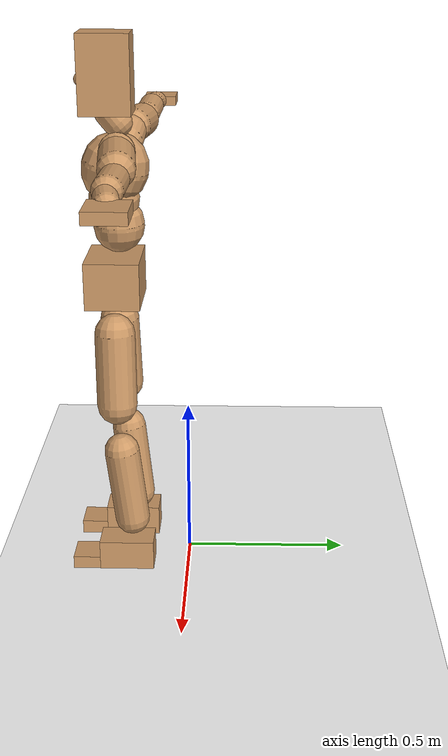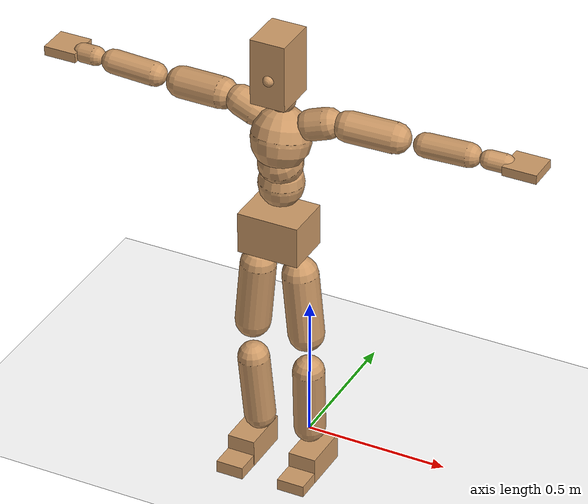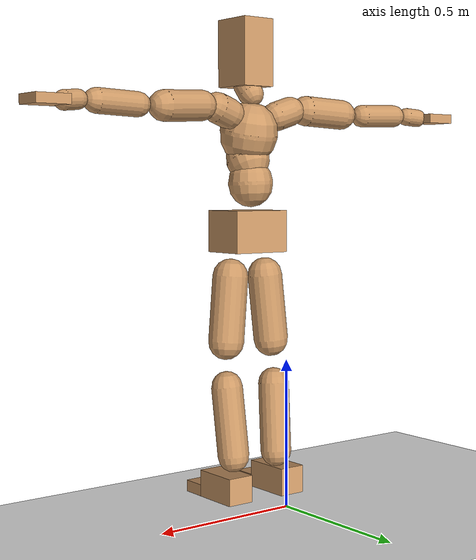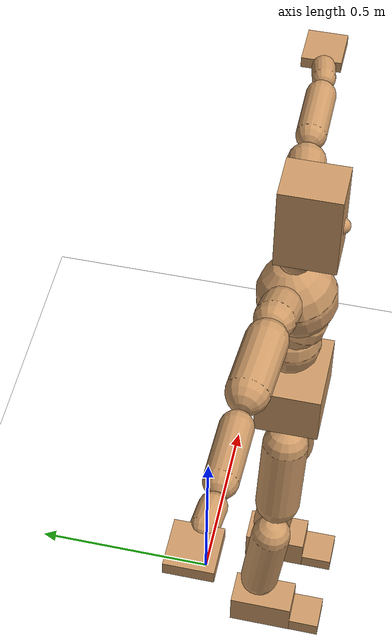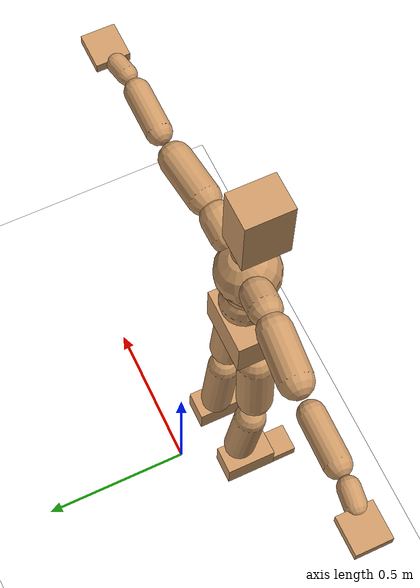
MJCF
<mujoco model="humanoid">
  <option integrator="implicitfast" />

  <visual>
    <global offwidth="1280" offheight="960" />
    <headlight active="1" ambient="0.34 0.34 0.34" diffuse="0.5 0.5 0.5" />
  </visual>

  <default>
    <joint damping="2" stiffness="2" armature="0.01" limited="true" solimplimit="0 .99 .01" />
    <geom condim="1" friction="0.7 0.005 0.0001" solimp=".99 .99 .003" solref="0.015 1" margin="0.001" rgba="0.8 0.6 .4 1" />
    <default class="smplcontact">
      <geom condim="3" friction="1. 0.005 0.0001" solref="0.015 1" solimp="0.98 0.98 0.001" priority="1" />
    </default>
    <default class="stiff_medium">
      <joint stiffness="10" />
    </default>
    <default class="stiff_medium_higher">
      <joint stiffness="50" />
    </default>
    <default class="stiff_high">
      <joint stiffness="100" />
    </default>
  </default>

  <asset>
    <texture type="skybox" builtin="gradient" rgb1="0.99 0.99 0.99" rgb2="0.608 0.828 0.892" width="100" />
    <texture builtin="flat" height="1278" mark="cross" markrgb="1 1 1" name="texgeom" random="0.01" rgb1="0.8 0.6 0.4" rgb2="0.8 0.6 0.4" type="cube" width="127" />
    <texture name="texplane" type="2d" builtin="checker" markrgb="1 1 1" rgb1="0.756 0.772 0.76" rgb2="0.6 0.6 0.6" width="100" height="100" />
    <material name="MatPlane" reflectance="0.5" texture="texplane" texrepeat="1 1" texuniform="true" />
    <material name="geom" texture="texgeom" texuniform="true" />
  </asset>

  <worldbody>
    <light name="tracking_light" pos="0 0 7" dir="0 0 -1" directional="true" cutoff="100" exponent="1" diffuse="1 1 1" specular="0.1 0.1 0.1" mode="trackcom" />
    <camera name="back" pos="0 3 2.4" xyaxes="-1 0 0 0 -1 2" mode="trackcom" />
    <camera name="side" pos="-3 0 2.4" xyaxes="0 -1 0 1 0 2" mode="trackcom" />
    <camera name="front_side" pos="-2.8 -2.8 0.8" xyaxes="0.5 -0.5 0 0.1 0.1 1" mode="trackcom" />
    <geom condim="3" name="floor" pos="0 0 0" rgba="1 1 1 1" size="100 100 .2" type="plane" material="MatPlane" />
    <body name="Pelvis" pos="-0.0018 -0.2233 0.9367" euler="90 0 0">
      <site name="Pelvis" size="0.01" />
      <freejoint name="Pelvis" />
      <geom type="box" pos="-0.0000 -0.0121 -0.0055" size="0.1069 0.0722 0.083" quat="1.0000 0.0000 0.0000 0.0000" density="3165.830099" name="Pelvis" />
      <body name="L_Hip" pos="0.0695 -0.0914 -0.0068">
        <joint name="L_Hip_x" type="hinge" pos="0 0 0" axis="1 0 0" stiffness="10.0" range="-160.0 22.92" class="stiff_medium" damping="15.0" armature="0.01"/>
        <joint name="L_Hip_y" type="hinge" pos="0 0 0" axis="0 1 0" stiffness="10.0" range="-70.0 70.0" class="stiff_medium" damping="10.000000000000007" armature="0.010000000000000014"/>
        <joint name="L_Hip_z" type="hinge" pos="0 0 0" axis="0 0 1" stiffness="10.0" range="-28.65 90.0" class="stiff_medium" damping="9.999999999999998" armature="0.009999999999999998"/>
        <geom type="capsule" density="2040.816327" fromto="0.0069 -0.075 -0.0009 0.0274 -0.3002 -0.0036" size="0.0615" name="L_Hip" />
        <body name="L_Knee" pos="0.0343 -0.3752 -0.0045">
          <joint name="L_Knee_x" type="hinge" pos="0 0 0" axis="1 0 0" range="-5.16 171.89" damping="8.000000000000002" armature="0.010000000000000007" stiffness="2.0"/>
          <joint name="L_Knee_y" type="hinge" pos="0 0 0" axis="0 1 0" range="-4.58 6.88" damping="8.000000000000004" armature="0.010000000000000009" stiffness="2.0"/>
          <joint name="L_Knee_z" type="hinge" pos="0 0 0" axis="0 0 1" range="-6.88 4.58" damping="8.0" armature="0.010000000000000002" stiffness="2.0"/>
          <geom type="capsule" density="1234.567901" fromto="-0.0027 -0.0796 -0.0087 -0.0109 -0.3184 -0.035" size="0.0541" name="L_Knee" />
          <body name="L_Ankle" pos="-0.0136 -0.398 -0.0437">
            <joint name="L_Ankle_x" type="hinge" pos="0 0 0" axis="1 0 0" range="-45.84 45.84" class="stiff_medium" damping="6.000000000000039" armature="0.010000000000000132" stiffness="10.0"/>
            <joint name="L_Ankle_y" type="hinge" pos="0 0 0" axis="0 1 0" range="-74.48 22.92" class="stiff_medium" damping="3.0" armature="0.01" stiffness="10.0"/>
            <joint name="L_Ankle_z" type="hinge" pos="0 0 0" axis="0 0 1" range="-4.58 4.58" class="stiff_medium" damping="5.9999999999999645" armature="0.009999999999999882" stiffness="10.0"/>
            <geom type="box" pos="0.0233 -0.0239 0.0242" size="0.0483 0.0464 0.085" quat="1.0000 0.0000 0.0000 0.0000" density="449.071558" name="L_Ankle" class="smplcontact" />
            <body name="L_Toe" pos="0.0264 -0.0558 0.1193">
              <joint name="L_Toe_x" type="hinge" pos="0 0 0" axis="1 0 0" range="-91.67 22.92" armature="0.009999999999998932" damping="1.9999999999998932" stiffness="2.0"/>
              <joint name="L_Toe_y" type="hinge" pos="0 0 0" axis="0 1 0" range="-4.58 4.58" armature="0.009999999999999976" damping="1.9999999999999976" stiffness="2.0"/>
              <joint name="L_Toe_z" type="hinge" pos="0 0 0" axis="0 0 1" range="-4.58 4.58" armature="0.009999999999999436" damping="1.9999999999999436" stiffness="2.0"/>
              <geom type="box" pos="-0.003 0.0055 0.0248" size="0.0478 0.02 0.0496" quat="1.0000 0.0000 0.0000 0.0000" density="423.206892" name="L_Toe" class="smplcontact" />
            </body>
          </body>
        </body>
      </body>
      <body name="R_Hip" pos="-0.0677 -0.0905 -0.0043">
        <joint name="R_Hip_x" type="hinge" pos="0 0 0" axis="1 0 0" stiffness="10.0" range="-160.0 22.92" class="stiff_medium" damping="15.0" armature="0.01"/>
        <joint name="R_Hip_y" type="hinge" pos="0 0 0" axis="0 1 0" stiffness="10.0" range="-70.0 70.0" class="stiff_medium" damping="10.000000000000007" armature="0.010000000000000014"/>
        <joint name="R_Hip_z" type="hinge" pos="0 0 0" axis="0 0 1" stiffness="10.0" range="-90.0 28.65" class="stiff_medium" damping="9.999999999999998" armature="0.009999999999999998"/>
        <geom type="capsule" density="2040.816327" fromto="-0.0077 -0.0765 -0.0018 -0.0306 -0.3061 -0.0071" size="0.0606" name="R_Hip" />
        <body name="R_Knee" pos="-0.0383 -0.3826 -0.0089">
          <joint name="R_Knee_x" type="hinge" pos="0 0 0" axis="1 0 0" range="-5.16 171.89" damping="8.000000000000002" armature="0.010000000000000007" stiffness="2.0"/>
          <joint name="R_Knee_y" type="hinge" pos="0 0 0" axis="0 1 0" range="-6.88 4.58" damping="8.000000000000004" armature="0.010000000000000009" stiffness="2.0"/>
          <joint name="R_Knee_z" type="hinge" pos="0 0 0" axis="0 0 1" range="-4.58 6.88" damping="8.0" armature="0.010000000000000002" stiffness="2.0"/>
          <geom type="capsule" density="1234.567901" fromto="0.0032 -0.0797 -0.0085 0.0126 -0.3187 -0.0338" size="0.0541" name="R_Knee" />
          <body name="R_Ankle" pos="0.0158 -0.3984 -0.0423">
            <joint name="R_Ankle_x" type="hinge" pos="0 0 0" axis="1 0 0" range="-45.84 45.84" class="stiff_medium" damping="6.000000000000039" armature="0.010000000000000132" stiffness="10.0"/>
            <joint name="R_Ankle_y" type="hinge" pos="0 0 0" axis="0 1 0" range="-22.92 74.48" class="stiff_medium" damping="3.0" armature="0.01" stiffness="10.0"/>
            <joint name="R_Ankle_z" type="hinge" pos="0 0 0" axis="0 0 1" range="-4.58 4.58" class="stiff_medium" damping="5.9999999999999645" armature="0.009999999999999882" stiffness="10.0"/>
            <geom type="box" pos="-0.0212 -0.0174 0.0256" size="0.0483 0.0478 0.0865" quat="1.0000 0.0000 0.0000 0.0000" density="434.700981" name="R_Ankle" class="smplcontact" />
            <body name="R_Toe" pos="-0.0254 -0.0481 0.1233">
              <joint name="R_Toe_x" type="hinge" pos="0 0 0" axis="1 0 0" range="-91.67 22.92" armature="0.009999999999998932" damping="1.9999999999998932" stiffness="2.0"/>
              <joint name="R_Toe_y" type="hinge" pos="0 0 0" axis="0 1 0" range="-4.58 4.58" armature="0.009999999999999976" damping="1.9999999999999976" stiffness="2.0"/>
              <joint name="R_Toe_z" type="hinge" pos="0 0 0" axis="0 0 1" range="-4.58 4.58" armature="0.009999999999999436" damping="1.9999999999999436" stiffness="2.0"/>
              <geom type="box" pos="0.0042 0.0045 0.0227" size="0.0479 0.0216 0.0493" quat="1.0000 0.0000 0.0000 0.0000" density="407.384095" name="R_Toe" class="smplcontact" />
            </body>
          </body>
        </body>
      </body>
      <body name="Torso" pos="-0.0021875 0.095375 -0.0233625">
        <joint name="Torso_x" type="hinge" pos="0 0 0" axis="1 0 0" range="-25.78 57.3" class="stiff_medium" damping="12.884492280290116" armature="0.008233002178535422" stiffness="8.96177159090909"/>
        <joint name="Torso_y" type="hinge" pos="0 0 0" axis="0 1 0" range="-57.3 57.3" class="stiff_high" damping="18.88793208934011" armature="0.010006382198476169" stiffness="89.13160909090911"/>
        <joint name="Torso_z" type="hinge" pos="0 0 0" axis="0 0 1" range="-34.38 34.38" class="stiff_high" damping="17.56583390086967" armature="0.008797358771480017" stiffness="87.684988372093"/>
        <geom type="capsule" density="2040.816327" fromto="0.0021875 0.0532 0.0004375 0.002625 0.0650125 0.000525" size="0.0769" name="Torso" />
        <body name="Spine" pos="0.0048125 0.1183 0.0009625">
          <joint name="Spine_x" type="hinge" pos="0 0 0" axis="1 0 0" stiffness="9.075225" range="-25.78 57.3" class="stiff_medium" damping="13.287627989273172" armature="0.008646791803757093"/>
          <joint name="Spine_y" type="hinge" pos="0 0 0" axis="0 1 0" stiffness="9.031208409090908" range="-57.3 57.3" class="stiff_high" damping="7.605901074925774" armature="0.010008650099243106"/>
          <joint name="Spine_z" type="hinge" pos="0 0 0" axis="0 0 1" stiffness="18.319183181818175" range="-34.38 34.38" class="stiff_high" damping="11.106207508663903" armature="0.009351751658453781"/>
          <geom type="capsule" density="2040.816327" fromto="0.0006125 0.020825 0.009975 0.0007 0.0254625 0.01225" size="0.0755" name="Spine" />
          <body name="Chest" pos="0.0013125 0.0462875 0.022225">
            <joint name="Chest_x" type="hinge" pos="0 0 0" axis="1 0 0" stiffness="9.320983181818182" range="-25.78 57.3" class="stiff_medium" damping="13.65774895798945" armature="0.008894345774515934"/>
            <joint name="Chest_y" type="hinge" pos="0 0 0" axis="0 1 0" stiffness="9.613366136363638" range="-57.3 57.3" class="stiff_high" damping="7.839974153460691" armature="0.00999019130224855"/>
            <joint name="Chest_z" type="hinge" pos="0 0 0" axis="0 0 1" stiffness="18.552558636363635" range="-34.38 34.38" class="stiff_high" damping="11.311899184701474" armature="0.00957932135106974"/>
            <geom type="capsule" density="2040.816327" fromto="-0.0007875 0.059675 -0.0151375 -0.000875 0.0728875 -0.01855" size="0.1002" name="Chest" />
            <body name="Neck" pos="-0.00245 0.187163 -0.0375375">
              <joint name="Neck_x" type="hinge" pos="0 0 0" axis="1 0 0" range="-28.65 57.3" class="stiff_medium_higher" damping="9.916151148548767" armature="0.009968555512362812" stiffness="49.320111363636364"/>
              <joint name="Neck_y" type="hinge" pos="0 0 0" axis="0 1 0" range="-40.11 40.11" class="stiff_medium_higher" damping="9.903089821880318" armature="0.009912386544877456" stiffness="49.46900909090908"/>
              <joint name="Neck_z" type="hinge" pos="0 0 0" axis="0 0 1" range="-40.11 40.11" class="stiff_medium_higher" damping="9.96268651642066" armature="0.009977866353976008" stiffness="49.73764886363636"/>
              <geom type="capsule" density="1000" fromto="0.000875 0.011375 0.0090125 0.0035875 0.0455 0.0359625" size="0.0436" name="Neck" />
              <body name="Head" pos="0.0052 0.065 0.0513">
                <joint name="Head_x" type="hinge" pos="0 0 0" axis="1 0 0" range="-28.65 57.3" class="stiff_medium_higher" damping="1.9999999999999987" armature="0.009999999999999986" stiffness="50.0"/>
                <joint name="Head_y" type="hinge" pos="0 0 0" axis="0 1 0" range="-40.11 40.11" class="stiff_medium_higher" damping="2.0" armature="0.01" stiffness="50.0"/>
                <joint name="Head_z" type="hinge" pos="0 0 0" axis="0 0 1" range="-40.11 40.11" class="stiff_medium_higher" damping="2.0" armature="0.01" stiffness="50.0"/>
                <geom type="box" pos="-0.0042 0.0876 -0.0116" size="0.0606 0.1154 0.076" quat="1.0000 0.0000 0.0000 0.0000" density="1018.069894" name="Head" />
                <geom type="capsule" name="nose" size="0.02 0.01" pos="0 0.07 0.05" quat="1 0 0 0" mass="0" contype="0" conaffinity="0" />
              </body>
            </body>
            <body name="L_Thorax" pos="0.0788 0.1217 -0.0341">
              <joint name="L_Thorax_x" type="hinge" pos="0 0 0" axis="1 0 0" range="-10.89 4.58" class="stiff_medium_higher" damping="19.99999999999997" armature="0.00999999999999997" stiffness="50.0"/>
              <joint name="L_Thorax_y" type="hinge" pos="0 0 0" axis="0 1 0" range="-28.65 17.19" class="stiff_medium_higher" damping="20.0" armature="0.010000000000000002" stiffness="50.0"/>
              <joint name="L_Thorax_z" type="hinge" pos="0 0 0" axis="0 0 1" range="-31.51 40.11" class="stiff_medium_higher" damping="19.999999999999996" armature="0.009999999999999998" stiffness="50.0"/>
              <geom type="capsule" density="1000" fromto="0.0182 0.0061 -0.0018 0.0728 0.0244 -0.0071" size="0.0521" name="L_Thorax" />
              <body name="L_Shoulder" pos="0.091 0.0305 -0.0089">
                <joint name="L_Shoulder_x" type="hinge" pos="0 0 0" axis="1 0 0" range="-97.4 97.4" class="stiff_medium" damping="6.000000000000034" armature="0.010000000000000111" stiffness="10.0"/>
                <joint name="L_Shoulder_y" type="hinge" pos="0 0 0" axis="0 1 0" range="-108.86 80.21" class="stiff_medium" damping="6.0" armature="0.01" stiffness="10.0"/>
                <joint name="L_Shoulder_z" type="hinge" pos="0 0 0" axis="0 0 1" range="-97.4 85.94" class="stiff_medium" damping="6.0" armature="0.010000000000000002" stiffness="10.0"/>
                <geom type="capsule" density="1000" fromto="0.0519 -0.0026 -0.0055 0.2077 -0.0102 -0.022" size="0.0517" name="L_Shoulder" />
                <body name="L_Elbow" pos="0.2596 -0.0128 -0.0275">
                  <joint name="L_Elbow_x" type="hinge" pos="0 0 0" axis="1 0 0" range="-17.19 4.58" damping="4.999999999999935" armature="0.00999999999999974" stiffness="2.0"/>
                  <joint name="L_Elbow_y" type="hinge" pos="0 0 0" axis="0 1 0" range="-180.0 17.19" damping="5.000000000000004" armature="0.010000000000000018" stiffness="2.0"/>
                  <joint name="L_Elbow_z" type="hinge" pos="0 0 0" axis="0 0 1" range="-100.84 4.58" damping="4.999999999999998" armature="0.009999999999999993" stiffness="2.0"/>
                  <geom type="capsule" density="1000" fromto="0.0498 0.0018 -0.0002 0.1994 0.0072 -0.0009" size="0.0405" name="L_Elbow" />
                  <body name="L_Wrist" pos="0.2492 0.009 -0.0012">
                    <joint name="L_Wrist_x" type="hinge" pos="0 0 0" axis="1 0 0" range="-180.0 22.92" armature="0.009999999999999702" damping="1.9999999999999702" stiffness="2.0"/>
                    <joint name="L_Wrist_y" type="hinge" pos="0 0 0" axis="0 1 0" range="-17.19 17.19" armature="0.00999999999999997" damping="1.9999999999999971" stiffness="2.0"/>
                    <joint name="L_Wrist_z" type="hinge" pos="0 0 0" axis="0 0 1" range="-22.92 22.92" armature="0.009999999999999969" damping="1.999999999999997" stiffness="2.0"/>
                    <geom type="capsule" density="1000" fromto="0.0168 -0.0016 -0.003 0.0672 -0.0065 -0.012" size="0.0318" name="L_Wrist" class="smplcontact" />
                    <body name="L_Hand" pos="0.084 -0.0082 -0.0149">
                      <joint name="L_Hand_x" type="hinge" pos="0 0 0" axis="1 0 0" range="-17.19 17.19" armature="0.009999999999999967" damping="1.9999999999999967" stiffness="2.0"/>
                      <joint name="L_Hand_y" type="hinge" pos="0 0 0" axis="0 1 0" range="-51.57 51.57" armature="0.01000000000000005" damping="2.000000000000005" stiffness="2.0"/>
                      <joint name="L_Hand_z" type="hinge" pos="0 0 0" axis="0 0 1" range="-91.67 91.67" armature="0.009999999999999808" damping="1.9999999999999807" stiffness="2.0"/>
                      <geom type="box" pos="0.0493 0.001 -0.0058" size="0.0585 0.0158 0.0538" quat="1.0000 0.0000 0.0000 0.0000" density="400.552564" name="L_Hand" class="smplcontact" />
                    </body>
                  </body>
                </body>
              </body>
            </body>
            <body name="R_Thorax" pos="-0.0818 0.1188 -0.0386">
              <joint name="R_Thorax_x" type="hinge" pos="0 0 0" axis="1 0 0" range="-10.89 4.58" class="stiff_medium_higher" damping="19.99999999999997" armature="0.00999999999999997" stiffness="50.0"/>
              <joint name="R_Thorax_y" type="hinge" pos="0 0 0" axis="0 1 0" range="-17.19 28.65" class="stiff_medium_higher" damping="20.0" armature="0.010000000000000002" stiffness="50.0"/>
              <joint name="R_Thorax_z" type="hinge" pos="0 0 0" axis="0 0 1" range="-40.11 31.51" class="stiff_medium_higher" damping="19.999999999999996" armature="0.009999999999999998" stiffness="50.0"/>
              <geom type="capsule" density="1000" fromto="-0.0192 0.0065 -0.0018 -0.0768 0.026 -0.0073" size="0.0511" name="R_Thorax" />
              <body name="R_Shoulder" pos="-0.096 0.0326 -0.0091">
                <joint name="R_Shoulder_x" type="hinge" pos="0 0 0" axis="1 0 0" range="-97.4 97.4" class="stiff_medium" damping="6.000000000000034" armature="0.010000000000000111" stiffness="10.0"/>
                <joint name="R_Shoulder_y" type="hinge" pos="0 0 0" axis="0 1 0" range="-80.21 108.86" class="stiff_medium" damping="6.0" armature="0.01" stiffness="10.0"/>
                <joint name="R_Shoulder_z" type="hinge" pos="0 0 0" axis="0 0 1" range="-85.94 97.4" class="stiff_medium" damping="6.0" armature="0.010000000000000002" stiffness="10.0"/>
                <geom type="capsule" density="1000" fromto="-0.0507 -0.0027 -0.0043 -0.203 -0.0107 -0.0171" size="0.0531" name="R_Shoulder" />
                <body name="R_Elbow" pos="-0.2537 -0.0133 -0.0214">
                  <joint name="R_Elbow_x" type="hinge" pos="0 0 0" axis="1 0 0" range="-17.19 4.58" damping="4.999999999999935" armature="0.00999999999999974" stiffness="2.0"/>
                  <joint name="R_Elbow_y" type="hinge" pos="0 0 0" axis="0 1 0" range="-17.19 180.0" damping="5.000000000000004" armature="0.010000000000000018" stiffness="2.0"/>
                  <joint name="R_Elbow_z" type="hinge" pos="0 0 0" axis="0 0 1" range="-4.58 100.84" damping="4.999999999999998" armature="0.009999999999999993" stiffness="2.0"/>
                  <geom type="capsule" density="1000" fromto="-0.0511 0.0016 -0.0011 -0.2042 0.0062 -0.0044" size="0.0408" name="R_Elbow" />
                  <body name="R_Wrist" pos="-0.2553 0.0078 -0.0056">
                    <joint name="R_Wrist_x" type="hinge" pos="0 0 0" axis="1 0 0" range="-180.0 22.92" armature="0.009999999999999702" damping="1.9999999999999702" stiffness="2.0"/>
                    <joint name="R_Wrist_y" type="hinge" pos="0 0 0" axis="0 1 0" range="-17.19 17.19" armature="0.00999999999999997" damping="1.9999999999999971" stiffness="2.0"/>
                    <joint name="R_Wrist_z" type="hinge" pos="0 0 0" axis="0 0 1" range="-22.92 22.92" armature="0.009999999999999969" damping="1.999999999999997" stiffness="2.0"/>
                    <geom type="capsule" density="1000" fromto="-0.0169 -0.0012 -0.0021 -0.0677 -0.0049 -0.0083" size="0.0326" name="R_Wrist" class="smplcontact" />
                    <body name="R_Hand" pos="-0.0846 -0.0061 -0.0103">
                      <joint name="R_Hand_x" type="hinge" pos="0 0 0" axis="1 0 0" range="-17.19 17.19" armature="0.009999999999999967" damping="1.9999999999999967" stiffness="2.0"/>
                      <joint name="R_Hand_y" type="hinge" pos="0 0 0" axis="0 1 0" range="-51.57 51.57" armature="0.01000000000000005" damping="2.000000000000005" stiffness="2.0"/>
                      <joint name="R_Hand_z" type="hinge" pos="0 0 0" axis="0 0 1" range="-91.67 91.67" armature="0.009999999999999808" damping="1.9999999999999807" stiffness="2.0"/>
                      <geom type="box" pos="-0.0462 -0.0009 -0.0079" size="0.0569 0.0164 0.0546" quat="1.0000 0.0000 0.0000 0.0000" density="403.679611" name="R_Hand" class="smplcontact" />
                    </body>
                  </body>
                </body>
              </body>
            </body>
          </body>
        </body>
      </body>
    </body>
  </worldbody>
  <actuator>
    <general name="L_Hip_x" joint="L_Hip_x" biastype="affine" gainprm="287.33006409732246" biasprm="-215.3247604770444 -180.0 -2.0" ctrllimited="true" ctrlrange="-1 1" forcerange="-360.0 360.0" />
    <general name="L_Hip_y" joint="L_Hip_y" biastype="affine" gainprm="219.9114857512855" biasprm="0.0 -180.0 -2.0000000000000013" ctrllimited="true" ctrlrange="-1 1" forcerange="-360.0 360.0" />
    <general name="L_Hip_z" joint="L_Hip_z" biastype="affine" gainprm="186.3749841742145" biasprm="96.3683546488669 -180.0 -1.9999999999999998" ctrllimited="true" ctrlrange="-1 1" forcerange="-360.0 360.0" />
    <general name="L_Knee_x" joint="L_Knee_x" biastype="affine" gainprm="278.10948965903646" biasprm="261.8988715665131 -180.0 -2.0000000000000004" ctrllimited="true" ctrlrange="-1 1" forcerange="-360.0 360.0" />
    <general name="L_Knee_y" joint="L_Knee_y" biastype="affine" gainprm="18.001325905069514" biasprm="3.612831551628262 -180.0 -2.000000000000001" ctrllimited="true" ctrlrange="-1 1" forcerange="-360.0 360.0" />
    <general name="L_Knee_z" joint="L_Knee_z" biastype="affine" gainprm="18.001325905069514" biasprm="-3.612831551628262 -180.0 -2.0" ctrllimited="true" ctrlrange="-1 1" forcerange="-360.0 360.0" />
    <general name="L_Ankle_x" joint="L_Ankle_x" biastype="affine" gainprm="72.00530362027807" biasprm="0.0 -90.0 -2.000000000000013" ctrllimited="true" ctrlrange="-1 1" forcerange="-180.0 180.0" />
    <general name="L_Ankle_y" joint="L_Ankle_y" biastype="affine" gainprm="76.49778111491148" biasprm="-40.49512930477244 -90.0 -2.0" ctrllimited="true" ctrlrange="-1 1" forcerange="-180.0 180.0" />
    <general name="L_Ankle_z" joint="L_Ankle_z" biastype="affine" gainprm="7.1942471767206255" biasprm="0.0 -90.0 -1.9999999999999882" ctrllimited="true" ctrlrange="-1 1" forcerange="-180.0 180.0" />
    <general name="L_Toe_x" joint="L_Toe_x" biastype="affine" gainprm="71.99902043497087" biasprm="-43.19689898685965 -72.0 -0.7999999999999573" ctrllimited="true" ctrlrange="-1 1" forcerange="-144.0 144.0" />
    <general name="L_Toe_y" joint="L_Toe_y" biastype="affine" gainprm="5.755397741376501" biasprm="0.0 -72.0 -0.799999999999999" ctrllimited="true" ctrlrange="-1 1" forcerange="-144.0 144.0" />
    <general name="L_Toe_z" joint="L_Toe_z" biastype="affine" gainprm="5.755397741376501" biasprm="0.0 -72.0 -0.7999999999999775" ctrllimited="true" ctrlrange="-1 1" forcerange="-144.0 144.0" />
    <general name="R_Hip_x" joint="R_Hip_x" biastype="affine" gainprm="287.33006409732246" biasprm="-215.3247604770444 -180.0 -2.0" ctrllimited="true" ctrlrange="-1 1" forcerange="-360.0 360.0" />
    <general name="R_Hip_y" joint="R_Hip_y" biastype="affine" gainprm="219.9114857512855" biasprm="0.0 -180.0 -2.0000000000000013" ctrllimited="true" ctrlrange="-1 1" forcerange="-360.0 360.0" />
    <general name="R_Hip_z" joint="R_Hip_z" biastype="affine" gainprm="186.3749841742145" biasprm="-96.3683546488669 -180.0 -1.9999999999999998" ctrllimited="true" ctrlrange="-1 1" forcerange="-360.0 360.0" />
    <general name="R_Knee_x" joint="R_Knee_x" biastype="affine" gainprm="278.10948965903646" biasprm="261.8988715665131 -180.0 -2.0000000000000004" ctrllimited="true" ctrlrange="-1 1" forcerange="-360.0 360.0" />
    <general name="R_Knee_y" joint="R_Knee_y" biastype="affine" gainprm="18.001325905069514" biasprm="-3.612831551628262 -180.0 -2.000000000000001" ctrllimited="true" ctrlrange="-1 1" forcerange="-360.0 360.0" />
    <general name="R_Knee_z" joint="R_Knee_z" biastype="affine" gainprm="18.001325905069514" biasprm="3.612831551628262 -180.0 -2.0" ctrllimited="true" ctrlrange="-1 1" forcerange="-360.0 360.0" />
    <general name="R_Ankle_x" joint="R_Ankle_x" biastype="affine" gainprm="72.00530362027807" biasprm="0.0 -90.0 -2.000000000000013" ctrllimited="true" ctrlrange="-1 1" forcerange="-180.0 180.0" />
    <general name="R_Ankle_y" joint="R_Ankle_y" biastype="affine" gainprm="76.49778111491148" biasprm="40.49512930477244 -90.0 -2.0" ctrllimited="true" ctrlrange="-1 1" forcerange="-180.0 180.0" />
    <general name="R_Ankle_z" joint="R_Ankle_z" biastype="affine" gainprm="7.1942471767206255" biasprm="0.0 -90.0 -1.9999999999999882" ctrllimited="true" ctrlrange="-1 1" forcerange="-180.0 180.0" />
    <general name="R_Toe_x" joint="R_Toe_x" biastype="affine" gainprm="71.99902043497087" biasprm="-43.19689898685965 -72.0 -0.7999999999999573" ctrllimited="true" ctrlrange="-1 1" forcerange="-144.0 144.0" />
    <general name="R_Toe_y" joint="R_Toe_y" biastype="affine" gainprm="5.755397741376501" biasprm="0.0 -72.0 -0.799999999999999" ctrllimited="true" ctrlrange="-1 1" forcerange="-144.0 144.0" />
    <general name="R_Toe_z" joint="R_Toe_z" biastype="affine" gainprm="5.755397741376501" biasprm="0.0 -72.0 -0.7999999999999775" ctrllimited="true" ctrlrange="-1 1" forcerange="-144.0 144.0" />
    <general name="Torso_x" joint="Torso_x" biastype="affine" gainprm="155.93692731299186" biasprm="59.161434146671915 -215.08251818181816 -3.4358646080773645" ctrllimited="true" ctrlrange="-1 1" forcerange="-322.62377727272724 322.62377727272724" />
    <general name="Torso_y" joint="Torso_y" biastype="affine" gainprm="213.9316191584949" biasprm="0.0 -213.91586181818187 -3.7775864178680223" ctrllimited="true" ctrlrange="-1 1" forcerange="-320.8737927272728 320.8737927272728" />
    <general name="Torso_z" joint="Torso_z" biastype="affine" gainprm="126.27568421346218" biasprm="0.0 -210.44397209302323 -3.5131667801739344" ctrllimited="true" ctrlrange="-1 1" forcerange="-315.66595813953484 315.66595813953484" />
    <general name="Spine_x" joint="Spine_x" biastype="affine" gainprm="157.9110432372101" biasprm="59.91040061190252 -217.80539999999996 -3.543367463806179" ctrllimited="true" ctrlrange="-1 1" forcerange="-326.70809999999994 326.70809999999994" />
    <general name="Spine_y" joint="Spine_y" biastype="affine" gainprm="216.76496785153307" biasprm="0.0 -216.7490018181818 -3.802950537462887" ctrllimited="true" ctrlrange="-1 1" forcerange="-325.1235027272727 325.1235027272727" />
    <general name="Spine_z" joint="Spine_z" biastype="affine" gainprm="131.90783470823095" biasprm="0.0 -219.83019818181813 -3.7020691695546346" ctrllimited="true" ctrlrange="-1 1" forcerange="-329.7452972727272 329.7452972727272" />
    <general name="Chest_x" joint="Chest_x" biastype="affine" gainprm="162.18729323376544" biasprm="61.53278144834239 -223.70359636363634 -3.6420663887971867" ctrllimited="true" ctrlrange="-1 1" forcerange="-335.55539454545453 335.55539454545453" />
    <general name="Chest_y" joint="Chest_y" biastype="affine" gainprm="230.73778248725435" biasprm="0.0 -230.72078727272728 -3.9199870767303455" ctrllimited="true" ctrlrange="-1 1" forcerange="-346.0811809090909 346.0811809090909" />
    <general name="Chest_z" joint="Chest_z" biastype="affine" gainprm="133.58826175443755" biasprm="0.0 -222.63070363636362 -3.7706330615671577" ctrllimited="true" ctrlrange="-1 1" forcerange="-333.9460554545454 333.9460554545454" />
    <general name="Neck_x" joint="Neck_x" biastype="affine" gainprm="26.634821949934217" biasprm="8.878273983311406 -35.51048018181818 -0.7932920918839014" ctrllimited="true" ctrlrange="-1 1" forcerange="-71.02096036363636 71.02096036363636" />
    <general name="Neck_y" joint="Neck_y" biastype="affine" gainprm="24.93421713569643" biasprm="0.0 -35.61768654545454 -0.7922471857504254" ctrllimited="true" ctrlrange="-1 1" forcerange="-71.23537309090908 71.23537309090908" />
    <general name="Neck_z" joint="Neck_z" biastype="affine" gainprm="25.069621554494397" biasprm="0.0 -35.81110718181818 -0.7970149213136529" ctrllimited="true" ctrlrange="-1 1" forcerange="-71.62221436363636 71.62221436363636" />
    <general name="Head_x" joint="Head_x" biastype="affine" gainprm="18.001325905069514" biasprm="6.000441968356505 -24.0 -0.7999999999999995" ctrllimited="true" ctrlrange="-1 1" forcerange="-48.0 48.0" />
    <general name="Head_y" joint="Head_y" biastype="affine" gainprm="16.801237511398213" biasprm="0.0 -24.0 -0.8" ctrllimited="true" ctrlrange="-1 1" forcerange="-48.0 48.0" />
    <general name="Head_z" joint="Head_z" biastype="affine" gainprm="16.801237511398213" biasprm="0.0 -24.0 -0.8" ctrllimited="true" ctrlrange="-1 1" forcerange="-48.0 48.0" />
    <general name="L_Thorax_x" joint="L_Thorax_x" biastype="affine" gainprm="16.200146117011364" biasprm="-6.6078165480505335 -120.0 -1.5999999999999979" ctrllimited="true" ctrlrange="-1 1" forcerange="-240.0 240.0" />
    <general name="L_Thorax_y" joint="L_Thorax_y" biastype="affine" gainprm="48.00353574685204" biasprm="-12.00088393671301 -120.0 -1.6" ctrllimited="true" ctrlrange="-1 1" forcerange="-240.0 240.0" />
    <general name="L_Thorax_z" joint="L_Thorax_z" biastype="affine" gainprm="75.00028861670033" biasprm="9.00589894029074 -120.0 -1.5999999999999999" ctrllimited="true" ctrlrange="-1 1" forcerange="-240.0 240.0" />
    <general name="L_Shoulder_x" joint="L_Shoulder_x" biastype="affine" gainprm="81.5976331892389" biasprm="0.0 -48.0 -1.600000000000009" ctrllimited="true" ctrlrange="-1 1" forcerange="-96.0 96.0" />
    <general name="L_Shoulder_y" joint="L_Shoulder_y" biastype="affine" gainprm="79.19745640189629" biasprm="-12.00088393671301 -48.0 -1.6" ctrllimited="true" ctrlrange="-1 1" forcerange="-96.0 96.0" />
    <general name="L_Shoulder_z" joint="L_Shoulder_z" biastype="affine" gainprm="76.79727961455369" biasprm="-4.800353574685214 -48.0 -1.6" ctrllimited="true" ctrlrange="-1 1" forcerange="-96.0 96.0" />
    <general name="L_Elbow_x" joint="L_Elbow_x" biastype="affine" gainprm="13.67849441372996" biasprm="-7.923096672353461 -72.0 -0.7999999999999896" ctrllimited="true" ctrlrange="-1 1" forcerange="-144.0 144.0" />
    <general name="L_Elbow_y" joint="L_Elbow_y" biastype="affine" gainprm="123.89813107227425" biasprm="-102.29653998619085 -72.0 -0.8000000000000007" ctrllimited="true" ctrlrange="-1 1" forcerange="-144.0 144.0" />
    <general name="L_Elbow_z" joint="L_Elbow_z" biastype="affine" gainprm="66.23733950828719" biasprm="-60.4819417669107 -72.0 -0.7999999999999998" ctrllimited="true" ctrlrange="-1 1" forcerange="-144.0 144.0" />
    <general name="L_Wrist_x" joint="L_Wrist_x" biastype="affine" gainprm="21.24973270888136" biasprm="-16.449379134196157 -12.0 -0.7999999999999882" ctrllimited="true" ctrlrange="-1 1" forcerange="-24.0 24.0" />
    <general name="L_Wrist_y" joint="L_Wrist_y" biastype="affine" gainprm="3.6002651810139037" biasprm="0.0 -12.0 -0.7999999999999989" ctrllimited="true" ctrlrange="-1 1" forcerange="-24.0 24.0" />
    <general name="L_Wrist_z" joint="L_Wrist_z" biastype="affine" gainprm="4.800353574685205" biasprm="0.0 -12.0 -0.7999999999999988" ctrllimited="true" ctrlrange="-1 1" forcerange="-24.0 24.0" />
    <general name="L_Hand_x" joint="L_Hand_x" biastype="affine" gainprm="3.6002651810139037" biasprm="0.0 -12.0 -0.7999999999999987" ctrllimited="true" ctrlrange="-1 1" forcerange="-24.0 24.0" />
    <general name="L_Hand_y" joint="L_Hand_y" biastype="affine" gainprm="10.800795543041708" biasprm="0.0 -12.0 -0.800000000000002" ctrllimited="true" ctrlrange="-1 1" forcerange="-24.0 24.0" />
    <general name="L_Hand_z" joint="L_Hand_z" biastype="affine" gainprm="19.199319903638422" biasprm="0.0 -12.0 -0.7999999999999923" ctrllimited="true" ctrlrange="-1 1" forcerange="-24.0 24.0" />
    <general name="R_Thorax_x" joint="R_Thorax_x" biastype="affine" gainprm="16.200146117011364" biasprm="-6.6078165480505335 -120.0 -1.5999999999999979" ctrllimited="true" ctrlrange="-1 1" forcerange="-240.0 240.0" />
    <general name="R_Thorax_y" joint="R_Thorax_y" biastype="affine" gainprm="48.00353574685204" biasprm="12.000883936713002 -120.0 -1.6" ctrllimited="true" ctrlrange="-1 1" forcerange="-240.0 240.0" />
    <general name="R_Thorax_z" joint="R_Thorax_z" biastype="affine" gainprm="75.00028861670033" biasprm="-9.00589894029074 -120.0 -1.5999999999999999" ctrllimited="true" ctrlrange="-1 1" forcerange="-240.0 240.0" />
    <general name="R_Shoulder_x" joint="R_Shoulder_x" biastype="affine" gainprm="81.5976331892389" biasprm="0.0 -48.0 -1.600000000000009" ctrllimited="true" ctrlrange="-1 1" forcerange="-96.0 96.0" />
    <general name="R_Shoulder_y" joint="R_Shoulder_y" biastype="affine" gainprm="79.19745640189629" biasprm="12.00088393671301 -48.0 -1.6" ctrllimited="true" ctrlrange="-1 1" forcerange="-96.0 96.0" />
    <general name="R_Shoulder_z" joint="R_Shoulder_z" biastype="affine" gainprm="76.79727961455369" biasprm="4.800353574685204 -48.0 -1.6" ctrllimited="true" ctrlrange="-1 1" forcerange="-96.0 96.0" />
    <general name="R_Elbow_x" joint="R_Elbow_x" biastype="affine" gainprm="13.67849441372996" biasprm="-7.923096672353461 -72.0 -0.7999999999999896" ctrllimited="true" ctrlrange="-1 1" forcerange="-144.0 144.0" />
    <general name="R_Elbow_y" joint="R_Elbow_y" biastype="affine" gainprm="123.89813107227425" biasprm="102.29653998619085 -72.0 -0.8000000000000007" ctrllimited="true" ctrlrange="-1 1" forcerange="-144.0 144.0" />
    <general name="R_Elbow_z" joint="R_Elbow_z" biastype="affine" gainprm="66.23733950828719" biasprm="60.481941766910694 -72.0 -0.7999999999999998" ctrllimited="true" ctrlrange="-1 1" forcerange="-144.0 144.0" />
    <general name="R_Wrist_x" joint="R_Wrist_x" biastype="affine" gainprm="21.24973270888136" biasprm="-16.449379134196157 -12.0 -0.7999999999999882" ctrllimited="true" ctrlrange="-1 1" forcerange="-24.0 24.0" />
    <general name="R_Wrist_y" joint="R_Wrist_y" biastype="affine" gainprm="3.6002651810139037" biasprm="0.0 -12.0 -0.7999999999999989" ctrllimited="true" ctrlrange="-1 1" forcerange="-24.0 24.0" />
    <general name="R_Wrist_z" joint="R_Wrist_z" biastype="affine" gainprm="4.800353574685205" biasprm="0.0 -12.0 -0.7999999999999988" ctrllimited="true" ctrlrange="-1 1" forcerange="-24.0 24.0" />
    <general name="R_Hand_x" joint="R_Hand_x" biastype="affine" gainprm="3.6002651810139037" biasprm="0.0 -12.0 -0.7999999999999987" ctrllimited="true" ctrlrange="-1 1" forcerange="-24.0 24.0" />
    <general name="R_Hand_y" joint="R_Hand_y" biastype="affine" gainprm="10.800795543041708" biasprm="0.0 -12.0 -0.800000000000002" ctrllimited="true" ctrlrange="-1 1" forcerange="-24.0 24.0" />
    <general name="R_Hand_z" joint="R_Hand_z" biastype="affine" gainprm="19.199319903638422" biasprm="0.0 -12.0 -0.7999999999999923" ctrllimited="true" ctrlrange="-1 1" forcerange="-24.0 24.0" />
  </actuator>
  <contact>
    <exclude body1="Torso" body2="Chest" />
    <exclude body1="Head" body2="Chest" />
    <exclude body1="R_Knee" body2="R_Toe" />
    <exclude body1="R_Knee" body2="L_Ankle" />
    <exclude body1="R_Knee" body2="L_Toe" />
    <exclude body1="L_Knee" body2="L_Toe" />
    <exclude body1="L_Knee" body2="R_Ankle" />
    <exclude body1="L_Knee" body2="R_Toe" />
    <exclude body1="L_Shoulder" body2="Chest" />
    <exclude body1="R_Shoulder" body2="Chest" />
  </contact>
  <sensor>
    <framelinvel name="sensor_Pelvis_framelinvel" objtype="xbody" objname="Pelvis" />
    <framelinvel name="sensor_L_Hip_framelinvel" objtype="xbody" objname="L_Hip" />
    <framelinvel name="sensor_L_Knee_framelinvel" objtype="xbody" objname="L_Knee" />
    <framelinvel name="sensor_L_Ankle_framelinvel" objtype="xbody" objname="L_Ankle" />
    <framelinvel name="sensor_L_Toe_framelinvel" objtype="xbody" objname="L_Toe" />
    <framelinvel name="sensor_R_Hip_framelinvel" objtype="xbody" objname="R_Hip" />
    <framelinvel name="sensor_R_Knee_framelinvel" objtype="xbody" objname="R_Knee" />
    <framelinvel name="sensor_R_Ankle_framelinvel" objtype="xbody" objname="R_Ankle" />
    <framelinvel name="sensor_R_Toe_framelinvel" objtype="xbody" objname="R_Toe" />
    <framelinvel name="sensor_Torso_framelinvel" objtype="xbody" objname="Torso" />
    <framelinvel name="sensor_Spine_framelinvel" objtype="xbody" objname="Spine" />
    <framelinvel name="sensor_Chest_framelinvel" objtype="xbody" objname="Chest" />
    <framelinvel name="sensor_Neck_framelinvel" objtype="xbody" objname="Neck" />
    <framelinvel name="sensor_Head_framelinvel" objtype="xbody" objname="Head" />
    <framelinvel name="sensor_L_Thorax_framelinvel" objtype="xbody" objname="L_Thorax" />
    <framelinvel name="sensor_L_Shoulder_framelinvel" objtype="xbody" objname="L_Shoulder" />
    <framelinvel name="sensor_L_Elbow_framelinvel" objtype="xbody" objname="L_Elbow" />
    <framelinvel name="sensor_L_Wrist_framelinvel" objtype="xbody" objname="L_Wrist" />
    <framelinvel name="sensor_L_Hand_framelinvel" objtype="xbody" objname="L_Hand" />
    <framelinvel name="sensor_R_Thorax_framelinvel" objtype="xbody" objname="R_Thorax" />
    <framelinvel name="sensor_R_Shoulder_framelinvel" objtype="xbody" objname="R_Shoulder" />
    <framelinvel name="sensor_R_Elbow_framelinvel" objtype="xbody" objname="R_Elbow" />
    <framelinvel name="sensor_R_Wrist_framelinvel" objtype="xbody" objname="R_Wrist" />
    <framelinvel name="sensor_R_Hand_framelinvel" objtype="xbody" objname="R_Hand" />
    <frameangvel name="sensor_Pelvis_frameangvel" objtype="xbody" objname="Pelvis" />
    <frameangvel name="sensor_L_Hip_frameangvel" objtype="xbody" objname="L_Hip" />
    <frameangvel name="sensor_L_Knee_frameangvel" objtype="xbody" objname="L_Knee" />
    <frameangvel name="sensor_L_Ankle_frameangvel" objtype="xbody" objname="L_Ankle" />
    <frameangvel name="sensor_L_Toe_frameangvel" objtype="xbody" objname="L_Toe" />
    <frameangvel name="sensor_R_Hip_frameangvel" objtype="xbody" objname="R_Hip" />
    <frameangvel name="sensor_R_Knee_frameangvel" objtype="xbody" objname="R_Knee" />
    <frameangvel name="sensor_R_Ankle_frameangvel" objtype="xbody" objname="R_Ankle" />
    <frameangvel name="sensor_R_Toe_frameangvel" objtype="xbody" objname="R_Toe" />
    <frameangvel name="sensor_Torso_frameangvel" objtype="xbody" objname="Torso" />
    <frameangvel name="sensor_Spine_frameangvel" objtype="xbody" objname="Spine" />
    <frameangvel name="sensor_Chest_frameangvel" objtype="xbody" objname="Chest" />
    <frameangvel name="sensor_Neck_frameangvel" objtype="xbody" objname="Neck" />
    <frameangvel name="sensor_Head_frameangvel" objtype="xbody" objname="Head" />
    <frameangvel name="sensor_L_Thorax_frameangvel" objtype="xbody" objname="L_Thorax" />
    <frameangvel name="sensor_L_Shoulder_frameangvel" objtype="xbody" objname="L_Shoulder" />
    <frameangvel name="sensor_L_Elbow_frameangvel" objtype="xbody" objname="L_Elbow" />
    <frameangvel name="sensor_L_Wrist_frameangvel" objtype="xbody" objname="L_Wrist" />
    <frameangvel name="sensor_L_Hand_frameangvel" objtype="xbody" objname="L_Hand" />
    <frameangvel name="sensor_R_Thorax_frameangvel" objtype="xbody" objname="R_Thorax" />
    <frameangvel name="sensor_R_Shoulder_frameangvel" objtype="xbody" objname="R_Shoulder" />
    <frameangvel name="sensor_R_Elbow_frameangvel" objtype="xbody" objname="R_Elbow" />
    <frameangvel name="sensor_R_Wrist_frameangvel" objtype="xbody" objname="R_Wrist" />
    <frameangvel name="sensor_R_Hand_frameangvel" objtype="xbody" objname="R_Hand" />
    <subtreelinvel name="Chest_subtreelinvel" body="Chest" />
    <gyro name="Pelvis_gyro" site="Pelvis" />
  </sensor>
</mujoco>
